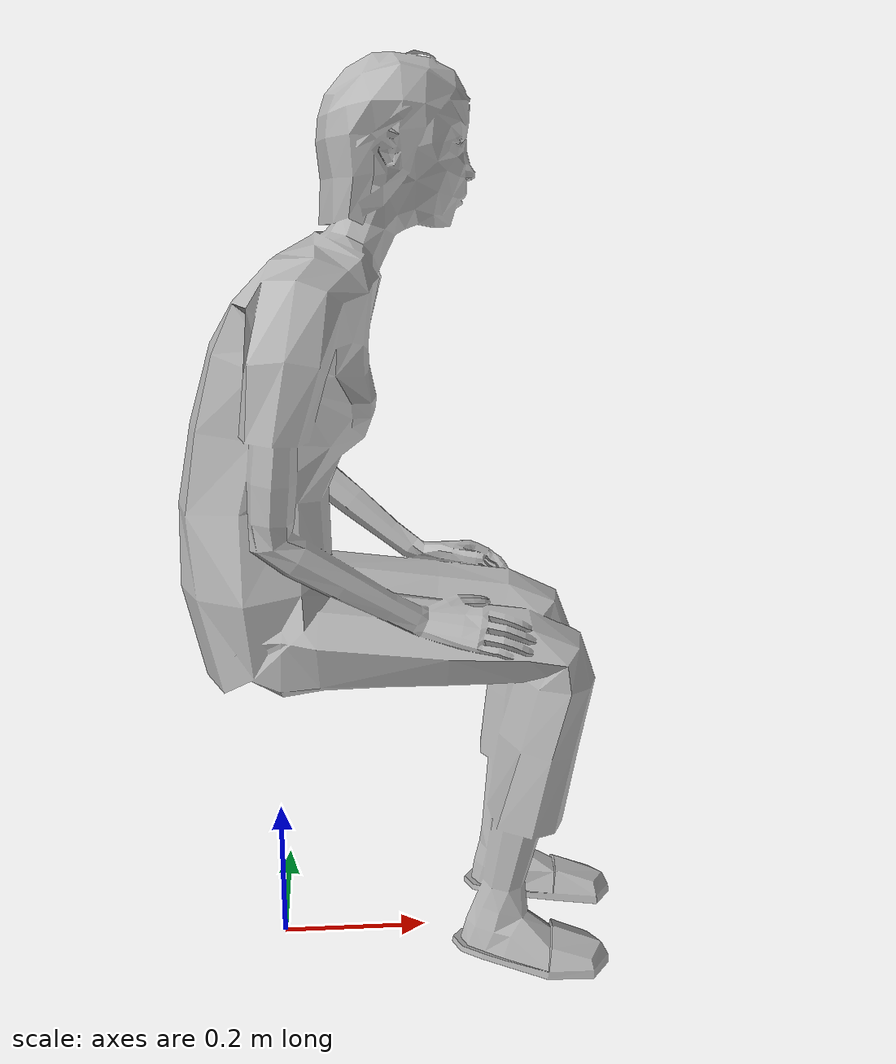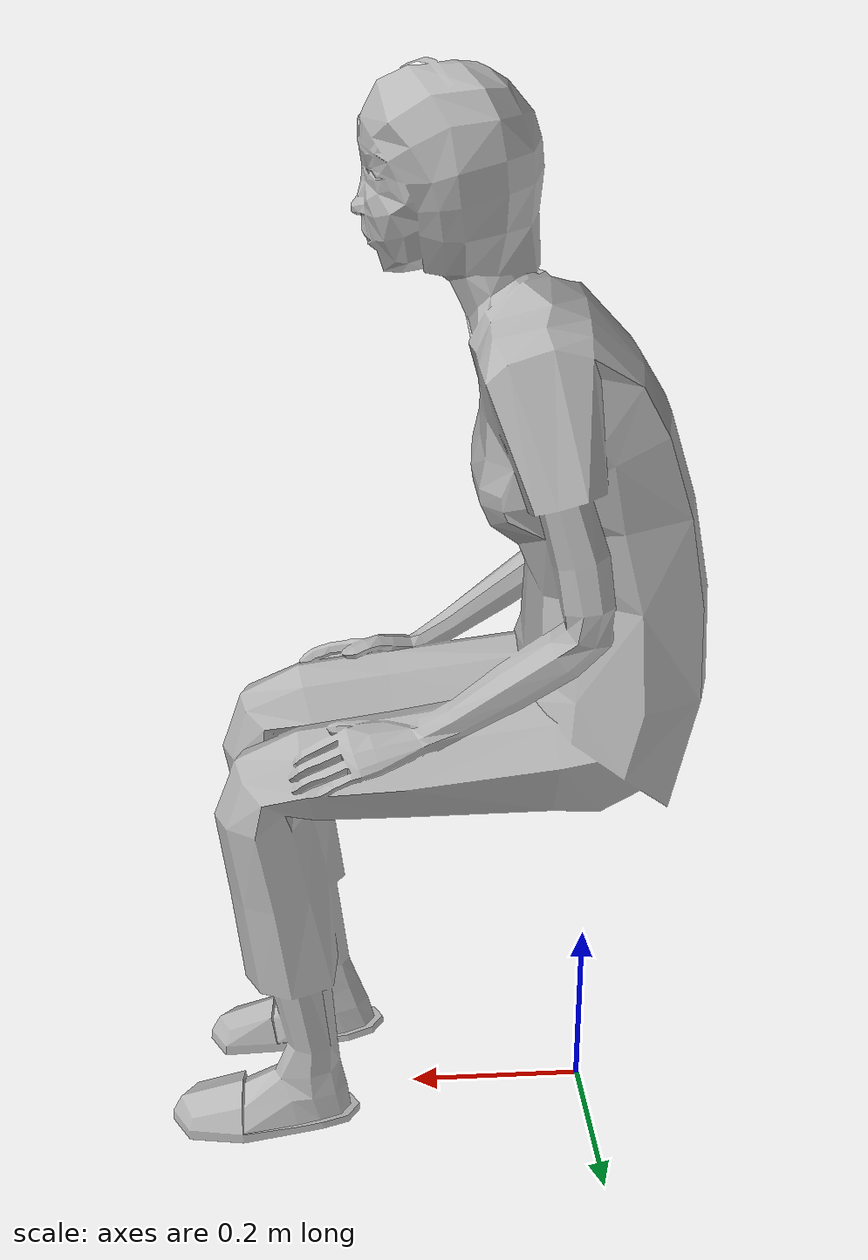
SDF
<?xml version='1.0' encoding='utf-8'?>
<sdf version="1.6">
  <model name="PatientFSit">
   <static>true</static>
    <link name="body">
      <pose>0 0 0 0 0 0</pose>

      <visual name="visual">
        <geometry>
          <mesh>
            <uri>model://PatientFSit/meshes/PatientFSit.obj</uri>
          </mesh>
        </geometry>
      </visual>

      <collision name="collision">
        <geometry>
          <mesh>
            <uri>model://PatientFSit/meshes/PatientFSit_Col.obj</uri>
          </mesh>
        </geometry>
      </collision>

    </link>
  </model>
</sdf>
